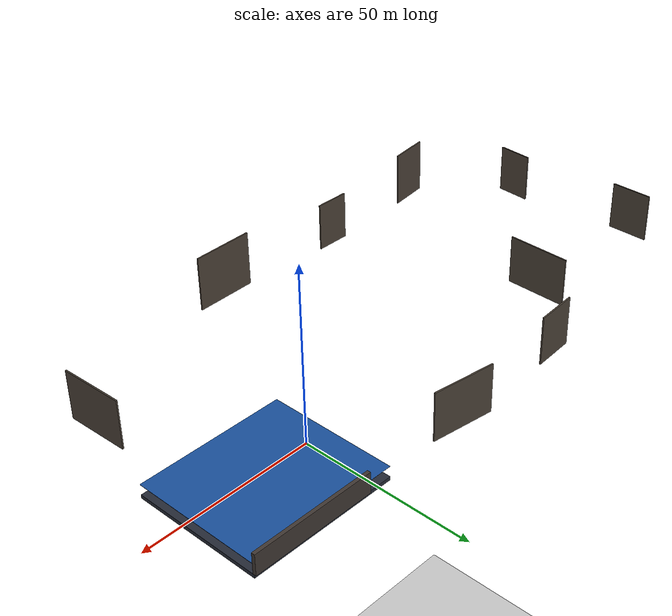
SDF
<sdf version="1.9">
 <world name="cavex_world">
  <physics name="4ms" type="bullet">
   <max_step_size>0.004</max_step_size>
   <real_time_factor>1.0</real_time_factor>
  </physics>
  <plugin filename="gz-sim-physics-system" name="gz::sim::systems::Physics">
   <engine><filename>gz-physics-bullet-featherstone-plugin</filename></engine>
  </plugin>
  <plugin filename="gz-sim-user-commands-system" name="gz::sim::systems::UserCommands"/>
  <plugin filename="gz-sim-scene-broadcaster-system" name="gz::sim::systems::SceneBroadcaster"/>
  <plugin filename="gz-sim-sensors-system" name="gz::sim::systems::Sensors">
   <render_engine>ogre2</render_engine>
  </plugin>
  <plugin filename="gz-sim-imu-system" name="gz::sim::systems::Imu"/>
  <plugin filename="gz-sim-apply-link-wrench-system" name="gz::sim::systems::ApplyLinkWrench"/>
  <light type="directional" name="sun">
   <pose>0 0 10 0 0 0</pose>
   <diffuse>0.8 0.8 0.8 1</diffuse>
   <specular>0.2 0.2 0.2 1</specular>
   <direction>-0.5 0.1 -0.9</direction>
  </light>
  <model name="ground_plane">
   <static>true</static>
   <pose>0 0 -200 0 0 0</pose>
   <link name="link">
    <collision name="collision">
     <geometry><plane><normal>0 0 1</normal><size>300 200</size></plane></geometry>
    </collision>
    <visual name="visual">
     <geometry><plane><normal>0 0 1</normal><size>300 200</size></plane></geometry>
     <material><ambient>0.8 0.8 0.8 1</ambient><diffuse>0.8 0.8 0.8 1</diffuse></material>
    </visual>
   </link>
  </model>
  <model name="play_floor">
   <static>true</static>
   <pose>-45 -15 4.0 0 0 0</pose>
   <link name="link">
    <collision name="collision">
     <geometry><box><size>200 110 1</size></box></geometry>
     <surface>
      <contact><ode><max_vel>1.0</max_vel></ode></contact>
      <friction><ode><mu>0.6</mu><mu2>0.6</mu2></ode></friction>
     </surface>
    </collision>
   </link>
  </model>
  <model name="cap_plate_1">
   <static>true</static>
   <pose>-103.4 -59.3 11.5 0 0 -1.442</pose>
   <link name="link">
    <collision name="collision">
     <geometry><box><size>0.4 12 16</size></box></geometry>
     <surface><friction><ode><mu>0.6</mu><mu2>0.6</mu2></ode></friction></surface>
    </collision>
    <visual name="visual">
     <geometry><box><size>0.4 12 16</size></box></geometry>
     <material><ambient>0.30 0.26 0.22 1</ambient><diffuse>0.30 0.26 0.22 1</diffuse></material>
    </visual>
   </link>
  </model>
  <model name="cap_plate_2">
   <static>true</static>
   <pose>-123.4 -34.1 12.4 0 0 3.091</pose>
   <link name="link">
    <collision name="collision">
     <geometry><box><size>0.4 10 14</size></box></geometry>
     <surface><friction><ode><mu>0.6</mu><mu2>0.6</mu2></ode></friction></surface>
    </collision>
    <visual name="visual">
     <geometry><box><size>0.4 10 14</size></box></geometry>
     <material><ambient>0.30 0.26 0.22 1</ambient><diffuse>0.30 0.26 0.22 1</diffuse></material>
    </visual>
   </link>
  </model>
  <model name="cap_plate_3">
   <static>true</static>
   <pose>-126.85 5.23 12.4 0 0 3.140</pose>
   <link name="link">
    <collision name="collision">
     <geometry><box><size>0.4 12 14</size></box></geometry>
     <surface><friction><ode><mu>0.6</mu><mu2>0.6</mu2></ode></friction></surface>
    </collision>
    <visual name="visual">
     <geometry><box><size>0.4 12 14</size></box></geometry>
     <material><ambient>0.30 0.26 0.22 1</ambient><diffuse>0.30 0.26 0.22 1</diffuse></material>
    </visual>
   </link>
  </model>
  <model name="cap_plate_4">
   <static>true</static>
   <pose>-65.12 -54.51 12.4 0 0 -1.568</pose>
   <link name="link">
    <collision name="collision">
     <geometry><box><size>0.4 10 14</size></box></geometry>
     <surface><friction><ode><mu>0.6</mu><mu2>0.6</mu2></ode></friction></surface>
    </collision>
    <visual name="visual">
     <geometry><box><size>0.4 10 14</size></box></geometry>
     <material><ambient>0.30 0.26 0.22 1</ambient><diffuse>0.30 0.26 0.22 1</diffuse></material>
    </visual>
   </link>
  </model>
  <model name="cap_plate_5">
   <static>true</static>
   <pose>-82.9 5.0 12.4 0 0 3.127</pose>
   <link name="link">
    <collision name="collision">
     <geometry><box><size>0.4 18 14</size></box></geometry>
     <surface><friction><ode><mu>0.6</mu><mu2>0.6</mu2></ode></friction></surface>
    </collision>
    <visual name="visual">
     <geometry><box><size>0.4 18 14</size></box></geometry>
     <material><ambient>0.30 0.26 0.22 1</ambient><diffuse>0.30 0.26 0.22 1</diffuse></material>
    </visual>
   </link>
  </model>
  <model name="cap_plate_6">
   <static>true</static>
   <pose>-62.99 25.5 12.4 0 0 1.636</pose>
   <link name="link">
    <collision name="collision">
     <geometry><box><size>0.4 12 14</size></box></geometry>
     <surface><friction><ode><mu>0.6</mu><mu2>0.6</mu2></ode></friction></surface>
    </collision>
    <visual name="visual">
     <geometry><box><size>0.4 12 14</size></box></geometry>
     <material><ambient>0.30 0.26 0.22 1</ambient><diffuse>0.30 0.26 0.22 1</diffuse></material>
    </visual>
   </link>
  </model>
  <model name="cap_plate_7">
   <static>true</static>
   <pose>-24.85 27.26 12.4 0 0 1.424</pose>
   <link name="link">
    <collision name="collision">
     <geometry><box><size>0.4 18 14</size></box></geometry>
     <surface><friction><ode><mu>0.6</mu><mu2>0.6</mu2></ode></friction></surface>
    </collision>
    <visual name="visual">
     <geometry><box><size>0.4 18 14</size></box></geometry>
     <material><ambient>0.30 0.26 0.22 1</ambient><diffuse>0.30 0.26 0.22 1</diffuse></material>
    </visual>
   </link>
  </model>
  <model name="cap_plate_8">
   <static>true</static>
   <pose>-26.17 -57.1 12.4 0 0 -1.543</pose>
   <link name="link">
    <collision name="collision">
     <geometry><box><size>0.4 18 16</size></box></geometry>
     <surface><friction><ode><mu>0.6</mu><mu2>0.6</mu2></ode></friction></surface>
    </collision>
    <visual name="visual">
     <geometry><box><size>0.4 18 16</size></box></geometry>
     <material><ambient>0.30 0.26 0.22 1</ambient><diffuse>0.30 0.26 0.22 1</diffuse></material>
    </visual>
   </link>
  </model>
  <model name="cap_plate_9">
   <static>true</static>
   <pose>34.67 -33.98 12.5 0 0 0.036</pose>
   <link name="link">
    <collision name="collision">
     <geometry><box><size>0.4 18 14</size></box></geometry>
     <surface><friction><ode><mu>0.6</mu><mu2>0.6</mu2></ode></friction></surface>
    </collision>
    <visual name="visual">
     <geometry><box><size>0.4 18 14</size></box></geometry>
     <material><ambient>0.30 0.26 0.22 1</ambient><diffuse>0.30 0.26 0.22 1</diffuse></material>
    </visual>
   </link>
  </model>
  <model name="basin_floor">
   <static>true</static>
   <pose>19 6.5 2.5 0 0 0</pose>
   <link name="link">
    <collision name="collision">
     <geometry><box><size>42 37 1</size></box></geometry>
     <surface>
      <contact><ode><max_vel>2.0</max_vel></ode></contact>
      <friction><ode><mu>0.45</mu><mu2>0.45</mu2></ode></friction>
     </surface>
    </collision>
    <visual name="visual">
     <geometry><box><size>42 37 1</size></box></geometry>
     <material><ambient>0.15 0.17 0.22 1</ambient><diffuse>0.15 0.17 0.22 1</diffuse></material>
    </visual>
   </link>
  </model>
  <model name="water_surface">
   <static>true</static>
   <pose>19 6.5 5.99 0 0 0</pose>
   <link name="surface">
    <visual name="water_visual">
     <geometry><plane><size>42 37</size></plane></geometry>
     <material>
      <diffuse>0.10 0.32 0.62 0.95</diffuse>
      <ambient>0.06 0.20 0.40 0.95</ambient>
      <specular>0.15 0.25 0.35 1.0</specular>
     </material>
    </visual>
   </link>
  </model>
  <model name="north_boundary_wall">
   <static>true</static>
   <pose>22.5 25 6.0 0 0 0</pose>
   <link name="link">
    <collision name="collision">
     <geometry><box><size>35 1 6.0</size></box></geometry>
     <surface>
      <contact><ode><max_vel>2.0</max_vel></ode></contact>
      <friction><ode><mu>0.45</mu><mu2>0.45</mu2></ode></friction>
     </surface>
    </collision>
    <visual name="visual">
     <geometry><box><size>35 1 6.0</size></box></geometry>
     <material><ambient>0.25 0.22 0.2 1</ambient><diffuse>0.25 0.22 0.2 1</diffuse></material>
    </visual>
   </link>
  </model>
 </world>
</sdf>
